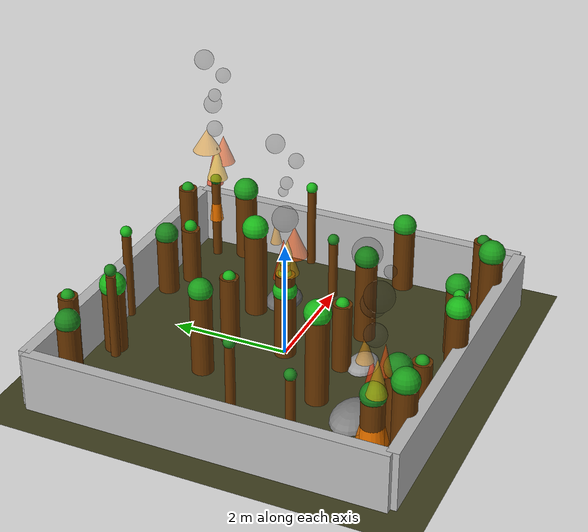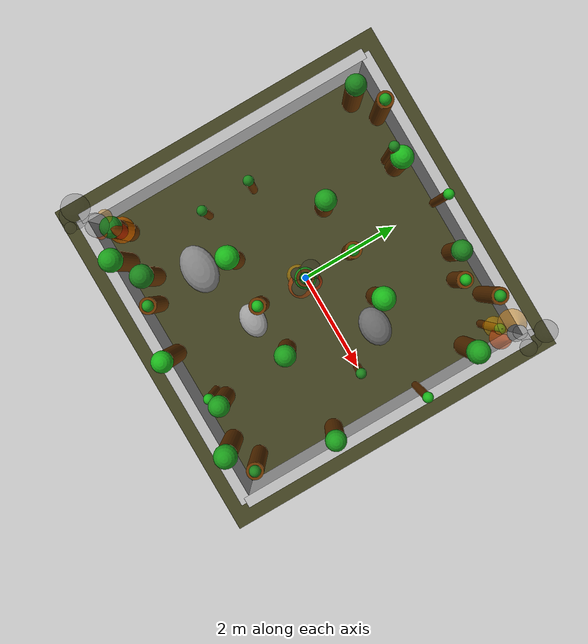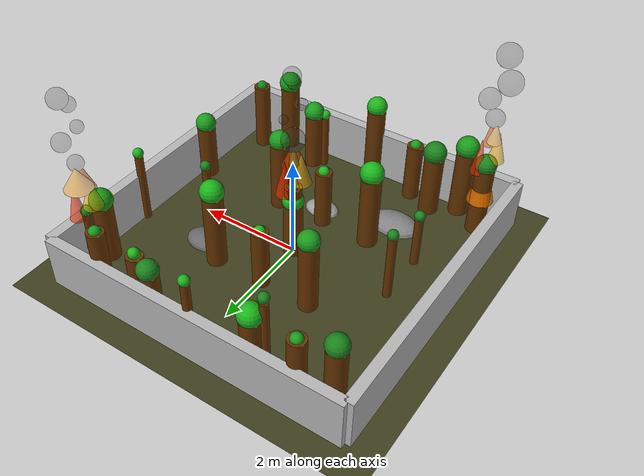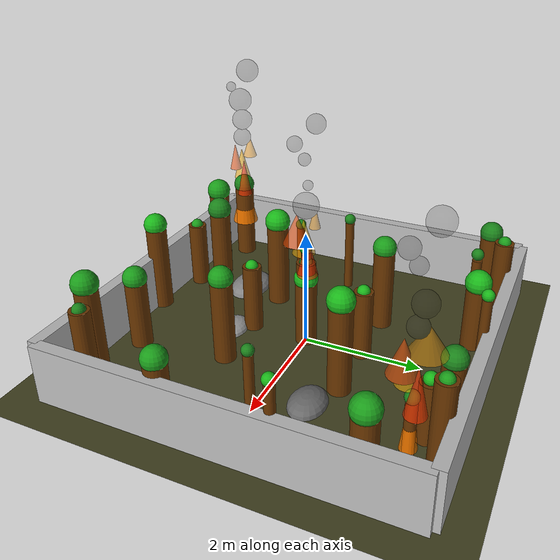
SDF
<sdf version="1.10">
 <world name="demo">
  <plugin name="gz::sim::systems::Physics" filename="gz-sim-physics-system"/>
  <plugin name="gz::sim::systems::Sensors" filename="gz-sim-sensors-system">
   <render_engine>ogre2</render_engine>
  </plugin>
  <plugin name="gz::sim::systems::SceneBroadcaster" filename="gz-sim-scene-broadcaster-system"/>
  <plugin name="gz::sim::systems::UserCommands" filename="gz-sim-user-commands-system"/>
  <plugin name="gz::sim::systems::Contact" filename="gz-sim-contact-system"/>
  <gravity>0 0 -9.8000000000000007</gravity>
  <magnetic_field>5.5644999999999998e-06 2.2875799999999999e-05 -4.2388400000000002e-05</magnetic_field>
  <atmosphere type="adiabatic"/>
  <physics type="ode">
   <max_step_size>0.001</max_step_size>
   <real_time_factor>1</real_time_factor>
   <real_time_update_rate>1000</real_time_update_rate>
   <ode>
    <solver>
     <type>quick</type>
     <iters>50</iters>
     <sor>1.0</sor>
     <use_dynamic_moi_rescaling>false</use_dynamic_moi_rescaling>
    </solver>
    <constraints>
     <cfm>0.0001</cfm>
     <erp>0.1</erp>
     <contact_max_correcting_vel>100.0</contact_max_correcting_vel>
     <contact_surface_layer>0.05</contact_surface_layer>
    </constraints>
   </ode>
  </physics>
  <scene>
   <ambient>0.400000006 0.400000006 0.400000006 1</ambient>
   <background>0.699999988 0.699999988 0.699999988 1</background>
   <shadows>true</shadows>
  </scene>
  <model name="wall1">
   <pose>3.0 0 0.5 0 0 0</pose>
   <static>true</static>
   <link name="link">
    <visual name="visual"><geometry><box><size>0.2 6 1</size></box></geometry></visual>
    <collision name="wall1_collision"><geometry><box><size>0.2 6 1</size></box></geometry></collision>
   </link>
  </model>
  <model name="wall2">
   <pose>-3.0 0 0.5 0 0 0</pose>
   <static>true</static>
   <link name="link">
    <visual name="visual"><geometry><box><size>0.2 6 1</size></box></geometry></visual>
    <collision name="wall2_collision"><geometry><box><size>0.2 6 1</size></box></geometry></collision>
   </link>
  </model>
  <model name="wall3">
   <pose>0 3.0 0.5 0 0 1.5708</pose>
   <static>true</static>
   <link name="link">
    <visual name="visual"><geometry><box><size>0.2 6 1</size></box></geometry></visual>
    <collision name="wall3_collision"><geometry><box><size>0.2 6 1</size></box></geometry></collision>
   </link>
  </model>
  <model name="wall4">
   <pose>0 -3.0 0.5 0 0 1.5708</pose>
   <static>true</static>
   <link name="link">
    <visual name="visual"><geometry><box><size>0.2 6 1</size></box></geometry></visual>
    <collision name="wall4_collision"><geometry><box><size>0.2 6 1</size></box></geometry></collision>
   </link>
  </model>
  <model name="arbre1">
   <pose>-1.2 2.5 0 0 0 0</pose>
   <link name="tronc">
    <visual name="tronc_vis">
     <geometry><cylinder><radius>0.08</radius><length>1.5</length></cylinder></geometry>
     <material><ambient>0.4 0.2 0 1</ambient><diffuse>0.4 0.2 0 1</diffuse></material>
     <pose>0 0 0.75 0 0 0</pose>
    </visual>
    <visual name="feuillage">
     <geometry><sphere><radius>0.1</radius></sphere></geometry>
     <material><ambient>0.1 0.5 0.1 1</ambient><diffuse>0.1 0.5 0.1 1</diffuse></material>
     <pose>0 0 1.6 0 0 0</pose>
    </visual>
    <collision name="tronc_collision">
     <geometry><cylinder><radius>0.12</radius><length>1.5</length></cylinder></geometry>
     <pose>0 0 0.75 0 0 0</pose>
    </collision>
    <collision name="feuillage_collision">
     <geometry><sphere><radius>0.15</radius></sphere></geometry>
     <pose>0 0 1.6 0 0 0</pose>
    </collision>
   </link>
   <static>true</static>
  </model>
  <model name="arbre2">
   <pose>1.2 -2.5 0 0 0 0</pose>
   <link name="tronc">
    <visual name="tronc_vis">
     <geometry><cylinder><radius>0.18</radius><length>1.2</length></cylinder></geometry>
     <material><ambient>0.4 0.2 0 1</ambient><diffuse>0.4 0.2 0 1</diffuse></material>
     <pose>0 0 0.6 0 0 0</pose>
    </visual>
    <visual name="feuillage">
     <geometry><sphere><radius>0.2</radius></sphere></geometry>
     <material><ambient>0.1 0.6 0.1 1</ambient><diffuse>0.1 0.6 0.1 1</diffuse></material>
     <pose>0 0 1.25 0 0 0</pose>
    </visual>
    <collision name="tronc_collision">
     <geometry><cylinder><radius>0.25</radius><length>1.2</length></cylinder></geometry>
     <pose>0 0 0.6 0 0 0</pose>
    </collision>
    <collision name="feuillage_collision">
     <geometry><sphere><radius>0.14</radius></sphere></geometry>
     <pose>0 0 1.25 0 0 0</pose>
    </collision>
   </link>
   <static>true</static>
  </model>
  <model name="arbre3">
   <pose>1.5 2.5 0 0 0 0</pose>
   <link name="tronc">
    <visual name="tronc_vis">
     <geometry><cylinder><radius>0.16</radius><length>1.0</length></cylinder></geometry>
     <material><ambient>0.4 0.2 0 1</ambient><diffuse>0.4 0.2 0 1</diffuse></material>
     <pose>0 0 0.5 0 0 0</pose>
    </visual>
    <visual name="feuillage">
     <geometry><sphere><radius>0.11</radius></sphere></geometry>
     <material><ambient>0.1 0.7 0.1 1</ambient><diffuse>0.1 0.7 0.1 1</diffuse></material>
     <pose>0 0 1.05 0 0 0</pose>
    </visual>
    <collision name="tronc_collision">
     <geometry><cylinder><radius>0.13</radius><length>1.0</length></cylinder></geometry>
     <pose>0 0 0.5 0 0 0</pose>
    </collision>
    <collision name="feuillage_collision">
     <geometry><sphere><radius>0.17</radius></sphere></geometry>
     <pose>0 0 1.0 0 0 0</pose>
    </collision>
   </link>
   <static>true</static>
  </model>
  <model name="arbre4">
   <pose>-1.5 -2.5 0 0 0 0</pose>
   <link name="tronc">
    <visual name="tronc_vis">
     <geometry><cylinder><radius>0.19</radius><length>1.3</length></cylinder></geometry>
     <material><ambient>0.4 0.2 0 1</ambient><diffuse>0.4 0.2 0 1</diffuse></material>
     <pose>0 0 0.65 0 0 0</pose>
    </visual>
    <visual name="feuillage">
     <geometry><sphere><radius>0.22</radius></sphere></geometry>
     <material><ambient>0.1 0.5 0.1 1</ambient><diffuse>0.1 0.5 0.1 1</diffuse></material>
     <pose>0 0 1.35 0 0 0</pose>
    </visual>
    <collision name="tronc_collision">
     <geometry><cylinder><radius>0.09</radius><length>1.3</length></cylinder></geometry>
     <pose>0 0 0.65 0 0 0</pose>
    </collision>
    <collision name="feuillage_collision">
     <geometry><sphere><radius>0.21</radius></sphere></geometry>
     <pose>0 0 1.3 0 0 0</pose>
    </collision>
   </link>
   <static>true</static>
  </model>
  <model name="arbre5">
   <link name="tronc">
    <visual name="tronc_vis">
     <geometry><cylinder><radius>0.08</radius><length>1.7</length></cylinder></geometry>
     <material><ambient>0.4 0.2 0 1</ambient><diffuse>0.4 0.2 0 1</diffuse></material>
     <pose>0 0 0.85 0 0 0</pose>
    </visual>
    <visual name="feuillage">
     <geometry><sphere><radius>0.1</radius></sphere></geometry>
     <material><ambient>0.1 0.6 0.1 1</ambient><diffuse>0.1 0.6 0.1 1</diffuse></material>
     <pose>0 0 1.75 0 0 0</pose>
    </visual>
    <collision name="tronc_collision">
     <geometry><cylinder><radius>0.12</radius><length>1.4</length></cylinder></geometry>
     <pose>0 0 0.7 0 0 0</pose>
    </collision>
    <collision name="feuillage_collision">
     <geometry><sphere><radius>0.15</radius></sphere></geometry>
     <pose>0 0 1.4 0 0 0</pose>
    </collision>
   </link>
   <static>true</static>
  </model>
  <model name="gros_caillou1">
   <pose>-1.2 -1.7 0 0 0 0</pose>
   <link name="caillou">
    <visual name="caillou_vis">
     <geometry><ellipsoid><radii>0.5 0.35 0.2</radii></ellipsoid></geometry>
     <material><ambient>0.5 0.5 0.5 1</ambient><diffuse>0.5 0.5 0.5 1</diffuse></material>
    </visual>
   </link>
   <static>true</static>
  </model>
  <model name="gros_caillou2">
   <pose>1.5 0.7 0 0 0 0</pose>
   <link name="caillou">
    <visual name="caillou_vis">
     <geometry><ellipsoid><radii>0.4 0.3 0.18</radii></ellipsoid></geometry>
     <material><ambient>0.4 0.4 0.4 1</ambient><diffuse>0.4 0.4 0.4 1</diffuse></material>
    </visual>
   </link>
   <static>true</static>
  </model>
  <model name="gros_caillou3">
   <pose>0.2 -1.3 0 0 0 0</pose>
   <link name="caillou">
    <visual name="caillou_vis">
     <geometry><ellipsoid><radii>0.35 0.25 0.15</radii></ellipsoid></geometry>
     <material><ambient>0.6 0.6 0.6 1</ambient><diffuse>0.6 0.6 0.6 1</diffuse></material>
    </visual>
   </link>
   <static>true</static>
  </model>
  <light name="sun" type="directional">
   <pose>0 0 10 0 0 0</pose>
   <intensity>1</intensity>
   <direction>-0.5 0.10000000000000001 -0.90000000000000002</direction>
   <diffuse>0.800000012 0.800000012 0.800000012 1</diffuse>
   <specular>0.200000003 0.200000003 0.200000003 1</specular>
   <attenuation>
    <range>1000</range>
    <linear>0.01</linear>
    <constant>0.90000000000000002</constant>
    <quadratic>0.001</quadratic>
   </attenuation>
   <spot><inner_angle>0</inner_angle><outer_angle>0</outer_angle><falloff>0</falloff></spot>
  </light>
  <model name="arbre16">
   <pose>-2.5 2.5 0 0 0 0</pose>
   <link name="tronc">
    <visual name="tronc_vis">
     <geometry><cylinder><radius>0.18</radius><length>1.4</length></cylinder></geometry>
     <material><ambient>0.4 0.2 0 1</ambient><diffuse>0.4 0.2 0 1</diffuse></material>
     <pose>0 0 0.7 0 0 0</pose>
    </visual>
    <visual name="feuillage">
     <geometry><sphere><radius>0.2</radius></sphere></geometry>
     <material><ambient>0.1 0.5 0.1 1</ambient><diffuse>0.1 0.5 0.1 1</diffuse></material>
     <pose>0 0 1.4 0 0 0</pose>
    </visual>
    <collision name="tronc_collision">
     <geometry><cylinder><radius>0.25</radius><length>1.4</length></cylinder></geometry>
     <pose>0 0 0.7 0 0 0</pose>
    </collision>
    <collision name="feuillage_collision">
     <geometry><sphere><radius>0.14</radius></sphere></geometry>
     <pose>0 0 1.4 0 0 0</pose>
    </collision>
   </link>
   <static>true</static>
  </model>
  <model name="arbre17">
   <pose>-2.0 2.8 0 0 0 0</pose>
   <link name="tronc">
    <visual name="tronc_vis">
     <geometry><cylinder><radius>0.16</radius><length>1.5</length></cylinder></geometry>
     <material><ambient>0.4 0.2 0 1</ambient><diffuse>0.4 0.2 0 1</diffuse></material>
     <pose>0 0 0.75 0 0 0</pose>
    </visual>
    <visual name="feuillage">
     <geometry><sphere><radius>0.11</radius></sphere></geometry>
     <material><ambient>0.1 0.6 0.1 1</ambient><diffuse>0.1 0.6 0.1 1</diffuse></material>
     <pose>0 0 1.5 0 0 0</pose>
    </visual>
    <collision name="tronc_collision">
     <geometry><cylinder><radius>0.13</radius><length>1.5</length></cylinder></geometry>
     <pose>0 0 0.75 0 0 0</pose>
    </collision>
    <collision name="feuillage_collision">
     <geometry><sphere><radius>0.17</radius></sphere></geometry>
     <pose>0 0 1.5 0 0 0</pose>
    </collision>
   </link>
   <static>true</static>
  </model>
  <model name="arbre18">
   <pose>-1.0 2.6 0 0 0 0</pose>
   <link name="tronc">
    <visual name="tronc_vis">
     <geometry><cylinder><radius>0.19</radius><length>1.2</length></cylinder></geometry>
     <material><ambient>0.4 0.2 0 1</ambient><diffuse>0.4 0.2 0 1</diffuse></material>
     <pose>0 0 0.6 0 0 0</pose>
    </visual>
    <visual name="feuillage">
     <geometry><sphere><radius>0.22</radius></sphere></geometry>
     <material><ambient>0.1 0.7 0.1 1</ambient><diffuse>0.1 0.7 0.1 1</diffuse></material>
     <pose>0 0 1.2 0 0 0</pose>
    </visual>
    <collision name="tronc_collision">
     <geometry><cylinder><radius>0.09</radius><length>1.2</length></cylinder></geometry>
     <pose>0 0 0.6 0 0 0</pose>
    </collision>
    <collision name="feuillage_collision">
     <geometry><sphere><radius>0.21</radius></sphere></geometry>
     <pose>0 0 1.2 0 0 0</pose>
    </collision>
   </link>
   <static>true</static>
  </model>
  <model name="arbre19">
   <pose>0.0 2.9 0 0 0 0</pose>
   <link name="tronc">
    <visual name="tronc_vis">
     <geometry><cylinder><radius>0.08</radius><length>1.6</length></cylinder></geometry>
     <material><ambient>0.4 0.2 0 1</ambient><diffuse>0.4 0.2 0 1</diffuse></material>
     <pose>0 0 0.8 0 0 0</pose>
    </visual>
    <visual name="feuillage">
     <geometry><sphere><radius>0.1</radius></sphere></geometry>
     <material><ambient>0.1 0.7 0.1 1</ambient><diffuse>0.1 0.7 0.1 1</diffuse></material>
     <pose>0 0 1.6 0 0 0</pose>
    </visual>
    <collision name="tronc_collision">
     <geometry><cylinder><radius>0.12</radius><length>1.6</length></cylinder></geometry>
     <pose>0 0 0.8 0 0 0</pose>
    </collision>
    <collision name="feuillage_collision">
     <geometry><sphere><radius>0.15</radius></sphere></geometry>
     <pose>0 0 1.6 0 0 0</pose>
    </collision>
   </link>
   <static>true</static>
  </model>
  <model name="arbre20">
   <pose>1.0 2.7 0 0 0 0</pose>
   <link name="tronc">
    <visual name="tronc_vis">
     <geometry><cylinder><radius>0.18</radius><length>1.1</length></cylinder></geometry>
     <material><ambient>0.4 0.2 0 1</ambient><diffuse>0.4 0.2 0 1</diffuse></material>
     <pose>0 0 0.55 0 0 0</pose>
    </visual>
    <visual name="feuillage">
     <geometry><sphere><radius>0.2</radius></sphere></geometry>
     <material><ambient>0.1 0.5 0.1 1</ambient><diffuse>0.1 0.5 0.1 1</diffuse></material>
     <pose>0 0 1.1 0 0 0</pose>
    </visual>
    <collision name="tronc_collision">
     <geometry><cylinder><radius>0.25</radius><length>1.1</length></cylinder></geometry>
     <pose>0 0 0.55 0 0 0</pose>
    </collision>
    <collision name="feuillage_collision">
     <geometry><sphere><radius>0.14</radius></sphere></geometry>
     <pose>0 0 1.1 0 0 0</pose>
    </collision>
   </link>
   <static>true</static>
  </model>
  <model name="arbre21">
   <pose>2.0 2.8 0 0 0 0</pose>
   <link name="tronc">
    <visual name="tronc_vis">
     <geometry><cylinder><radius>0.16</radius><length>1.5</length></cylinder></geometry>
     <material><ambient>0.4 0.2 0 1</ambient><diffuse>0.4 0.2 0 1</diffuse></material>
     <pose>0 0 0.75 0 0 0</pose>
    </visual>
    <visual name="feuillage">
     <geometry><sphere><radius>0.11</radius></sphere></geometry>
     <material><ambient>0.1 0.6 0.1 1</ambient><diffuse>0.1 0.6 0.1 1</diffuse></material>
     <pose>0 0 1.5 0 0 0</pose>
    </visual>
    <collision name="tronc_collision">
     <geometry><cylinder><radius>0.13</radius><length>1.5</length></cylinder></geometry>
     <pose>0 0 0.75 0 0 0</pose>
    </collision>
    <collision name="feuillage_collision">
     <geometry><sphere><radius>0.17</radius></sphere></geometry>
     <pose>0 0 1.5 0 0 0</pose>
    </collision>
   </link>
   <static>true</static>
  </model>
  <model name="arbre22">
   <pose>2.7 2.0 0 0 0 0</pose>
   <link name="tronc">
    <visual name="tronc_vis">
     <geometry><cylinder><radius>0.19</radius><length>1.3</length></cylinder></geometry>
     <material><ambient>0.4 0.2 0 1</ambient><diffuse>0.4 0.2 0 1</diffuse></material>
     <pose>0 0 0.65 0 0 0</pose>
    </visual>
    <visual name="feuillage">
     <geometry><sphere><radius>0.22</radius></sphere></geometry>
     <material><ambient>0.1 0.6 0.1 1</ambient><diffuse>0.1 0.6 0.1 1</diffuse></material>
     <pose>0 0 1.3 0 0 0</pose>
    </visual>
    <collision name="tronc_collision">
     <geometry><cylinder><radius>0.09</radius><length>1.3</length></cylinder></geometry>
     <pose>0 0 0.65 0 0 0</pose>
    </collision>
    <collision name="feuillage_collision">
     <geometry><sphere><radius>0.21</radius></sphere></geometry>
     <pose>0 0 1.3 0 0 0</pose>
    </collision>
   </link>
   <static>true</static>
  </model>
  <model name="arbre23">
   <pose>2.9 0.8 0 0 0 0</pose>
   <link name="tronc">
    <visual name="tronc_vis">
     <geometry><cylinder><radius>0.08</radius><length>1.5</length></cylinder></geometry>
     <material><ambient>0.4 0.2 0 1</ambient><diffuse>0.4 0.2 0 1</diffuse></material>
     <pose>0 0 0.75 0 0 0</pose>
    </visual>
    <visual name="feuillage">
     <geometry><sphere><radius>0.1</radius></sphere></geometry>
     <material><ambient>0.1 0.7 0.1 1</ambient><diffuse>0.1 0.7 0.1 1</diffuse></material>
     <pose>0 0 1.5 0 0 0</pose>
    </visual>
    <collision name="tronc_collision">
     <geometry><cylinder><radius>0.12</radius><length>1.5</length></cylinder></geometry>
     <pose>0 0 0.75 0 0 0</pose>
    </collision>
    <collision name="feuillage_collision">
     <geometry><sphere><radius>0.15</radius></sphere></geometry>
     <pose>0 0 1.5 0 0 0</pose>
    </collision>
   </link>
   <static>true</static>
  </model>
  <model name="arbre24">
   <pose>2.8 -1.0 0 0 0 0</pose>
   <link name="tronc">
    <visual name="tronc_vis">
     <geometry><cylinder><radius>0.18</radius><length>1.2</length></cylinder></geometry>
     <material><ambient>0.4 0.2 0 1</ambient><diffuse>0.4 0.2 0 1</diffuse></material>
     <pose>0 0 0.6 0 0 0</pose>
    </visual>
    <visual name="feuillage">
     <geometry><sphere><radius>0.2</radius></sphere></geometry>
     <material><ambient>0.1 0.6 0.1 1</ambient><diffuse>0.1 0.6 0.1 1</diffuse></material>
     <pose>0 0 1.2 0 0 0</pose>
    </visual>
    <collision name="tronc_collision">
     <geometry><cylinder><radius>0.25</radius><length>1.2</length></cylinder></geometry>
     <pose>0 0 0.6 0 0 0</pose>
    </collision>
    <collision name="feuillage_collision">
     <geometry><sphere><radius>0.14</radius></sphere></geometry>
     <pose>0 0 1.2 0 0 0</pose>
    </collision>
   </link>
   <static>true</static>
  </model>
  <model name="arbre25">
   <pose>2.5 -2.5 0 0 0 0</pose>
   <link name="tronc">
    <visual name="tronc_vis">
     <geometry><cylinder><radius>0.16</radius><length>1.4</length></cylinder></geometry>
     <material><ambient>0.4 0.2 0 1</ambient><diffuse>0.4 0.2 0 1</diffuse></material>
     <pose>0 0 0.7 0 0 0</pose>
    </visual>
    <visual name="feuillage">
     <geometry><sphere><radius>0.11</radius></sphere></geometry>
     <material><ambient>0.1 0.5 0.1 1</ambient><diffuse>0.1 0.5 0.1 1</diffuse></material>
     <pose>0 0 1.4 0 0 0</pose>
    </visual>
    <collision name="tronc_collision">
     <geometry><cylinder><radius>0.13</radius><length>1.4</length></cylinder></geometry>
     <pose>0 0 0.7 0 0 0</pose>
    </collision>
    <collision name="feuillage_collision">
     <geometry><sphere><radius>0.17</radius></sphere></geometry>
     <pose>0 0 1.4 0 0 0</pose>
    </collision>
   </link>
   <static>true</static>
  </model>
  <model name="arbre26">
   <pose>2.0 -2.8 0 0 0 0</pose>
   <link name="tronc">
    <visual name="tronc_vis">
     <geometry><cylinder><radius>0.19</radius><length>1.5</length></cylinder></geometry>
     <material><ambient>0.4 0.2 0 1</ambient><diffuse>0.4 0.2 0 1</diffuse></material>
     <pose>0 0 0.75 0 0 0</pose>
    </visual>
    <visual name="feuillage">
     <geometry><sphere><radius>0.22</radius></sphere></geometry>
     <material><ambient>0.1 0.6 0.1 1</ambient><diffuse>0.1 0.6 0.1 1</diffuse></material>
     <pose>0 0 1.5 0 0 0</pose>
    </visual>
    <collision name="tronc_collision">
     <geometry><cylinder><radius>0.09</radius><length>1.5</length></cylinder></geometry>
     <pose>0 0 0.75 0 0 0</pose>
    </collision>
    <collision name="feuillage_collision">
     <geometry><sphere><radius>0.21</radius></sphere></geometry>
     <pose>0 0 1.5 0 0 0</pose>
    </collision>
   </link>
   <static>true</static>
  </model>
  <model name="arbre27">
   <pose>1.0 -2.6 0 0 0 0</pose>
   <link name="tronc">
    <visual name="tronc_vis">
     <geometry><cylinder><radius>0.08</radius><length>1.2</length></cylinder></geometry>
     <material><ambient>0.4 0.2 0 1</ambient><diffuse>0.4 0.2 0 1</diffuse></material>
     <pose>0 0 0.6 0 0 0</pose>
    </visual>
    <visual name="feuillage">
     <geometry><sphere><radius>0.1</radius></sphere></geometry>
     <material><ambient>0.1 0.7 0.1 1</ambient><diffuse>0.1 0.7 0.1 1</diffuse></material>
     <pose>0 0 1.2 0 0 0</pose>
    </visual>
    <collision name="tronc_collision">
     <geometry><cylinder><radius>0.12</radius><length>1.2</length></cylinder></geometry>
     <pose>0 0 0.6 0 0 0</pose>
    </collision>
    <collision name="feuillage_collision">
     <geometry><sphere><radius>0.15</radius></sphere></geometry>
     <pose>0 0 1.2 0 0 0</pose>
    </collision>
   </link>
   <static>true</static>
  </model>
  <model name="arbre28">
   <pose>0.0 -2.9 0 0 0 0</pose>
   <link name="tronc">
    <visual name="tronc_vis">
     <geometry><cylinder><radius>0.18</radius><length>1.6</length></cylinder></geometry>
     <material><ambient>0.4 0.2 0 1</ambient><diffuse>0.4 0.2 0 1</diffuse></material>
     <pose>0 0 0.8 0 0 0</pose>
    </visual>
    <visual name="feuillage">
     <geometry><sphere><radius>0.2</radius></sphere></geometry>
     <material><ambient>0.1 0.7 0.1 1</ambient><diffuse>0.1 0.7 0.1 1</diffuse></material>
     <pose>0 0 1.6 0 0 0</pose>
    </visual>
    <collision name="tronc_collision">
     <geometry><cylinder><radius>0.25</radius><length>1.6</length></cylinder></geometry>
     <pose>0 0 0.8 0 0 0</pose>
    </collision>
    <collision name="feuillage_collision">
     <geometry><sphere><radius>0.14</radius></sphere></geometry>
     <pose>0 0 1.6 0 0 0</pose>
    </collision>
   </link>
   <static>true</static>
  </model>
  <model name="arbre29">
   <pose>-1.0 -2.7 0 0 0 0</pose>
   <link name="tronc">
    <visual name="tronc_vis">
     <geometry><cylinder><radius>0.16</radius><length>1.2</length></cylinder></geometry>
     <material><ambient>0.4 0.2 0 1</ambient><diffuse>0.4 0.2 0 1</diffuse></material>
     <pose>0 0 0.6 0 0 0</pose>
    </visual>
    <visual name="feuillage">
     <geometry><sphere><radius>0.11</radius></sphere></geometry>
     <material><ambient>0.1 0.6 0.1 1</ambient><diffuse>0.1 0.6 0.1 1</diffuse></material>
     <pose>0 0 1.2 0 0 0</pose>
    </visual>
    <collision name="tronc_collision">
     <geometry><cylinder><radius>0.13</radius><length>1.2</length></cylinder></geometry>
     <pose>0 0 0.6 0 0 0</pose>
    </collision>
    <collision name="feuillage_collision">
     <geometry><sphere><radius>0.17</radius></sphere></geometry>
     <pose>0 0 1.2 0 0 0</pose>
    </collision>
   </link>
   <static>true</static>
  </model>
  <model name="arbre30">
   <pose>-2.0 -2.8 0 0 0 0</pose>
   <link name="tronc">
    <visual name="tronc_vis">
     <geometry><cylinder><radius>0.19</radius><length>1.5</length></cylinder></geometry>
     <material><ambient>0.4 0.2 0 1</ambient><diffuse>0.4 0.2 0 1</diffuse></material>
     <pose>0 0 0.75 0 0 0</pose>
    </visual>
    <visual name="feuillage">
     <geometry><sphere><radius>0.22</radius></sphere></geometry>
     <material><ambient>0.1 0.6 0.1 1</ambient><diffuse>0.1 0.6 0.1 1</diffuse></material>
     <pose>0 0 1.5 0 0 0</pose>
    </visual>
    <collision name="tronc_collision">
     <geometry><cylinder><radius>0.09</radius><length>1.5</length></cylinder></geometry>
     <pose>0 0 0.75 0 0 0</pose>
    </collision>
    <collision name="feuillage_collision">
     <geometry><sphere><radius>0.21</radius></sphere></geometry>
     <pose>0 0 1.5 0 0 0</pose>
    </collision>
   </link>
   <static>true</static>
  </model>
  <model name="arbre31">
   <pose>-2.0 0.0 0 0 0 0</pose>
   <link name="tronc">
    <visual name="tronc_vis">
     <geometry><cylinder><radius>0.08</radius><length>1.4</length></cylinder></geometry>
     <material><ambient>0.4 0.2 0 1</ambient><diffuse>0.4 0.2 0 1</diffuse></material>
     <pose>0 0 0.7 0 0 0</pose>
    </visual>
    <visual name="feuillage">
     <geometry><sphere><radius>0.1</radius></sphere></geometry>
     <material><ambient>0.1 0.5 0.1 1</ambient><diffuse>0.1 0.5 0.1 1</diffuse></material>
     <pose>0 0 1.4 0 0 0</pose>
    </visual>
    <collision name="tronc_collision">
     <geometry><cylinder><radius>0.12</radius><length>1.4</length></cylinder></geometry>
     <pose>0 0 0.7 0 0 0</pose>
    </collision>
    <collision name="feuillage_collision">
     <geometry><sphere><radius>0.15</radius></sphere></geometry>
     <pose>0 0 1.4 0 0 0</pose>
    </collision>
   </link>
   <static>true</static>
  </model>
  <model name="arbre32">
   <pose>-1.0 1.0 0 0 0 0</pose>
   <link name="tronc">
    <visual name="tronc_vis">
     <geometry><cylinder><radius>0.18</radius><length>1.5</length></cylinder></geometry>
     <material><ambient>0.4 0.2 0 1</ambient><diffuse>0.4 0.2 0 1</diffuse></material>
     <pose>0 0 0.75 0 0 0</pose>
    </visual>
    <visual name="feuillage">
     <geometry><sphere><radius>0.2</radius></sphere></geometry>
     <material><ambient>0.1 0.6 0.1 1</ambient><diffuse>0.1 0.6 0.1 1</diffuse></material>
     <pose>0 0 1.5 0 0 0</pose>
    </visual>
    <collision name="tronc_collision">
     <geometry><cylinder><radius>0.25</radius><length>1.5</length></cylinder></geometry>
     <pose>0 0 0.75 0 0 0</pose>
    </collision>
    <collision name="feuillage_collision">
     <geometry><sphere><radius>0.14</radius></sphere></geometry>
     <pose>0 0 1.5 0 0 0</pose>
    </collision>
   </link>
   <static>true</static>
  </model>
  <model name="arbre33">
   <pose>0.0 1.0 0 0 0 0</pose>
   <link name="tronc">
    <visual name="tronc_vis">
     <geometry><cylinder><radius>0.16</radius><length>1.2</length></cylinder></geometry>
     <material><ambient>0.4 0.2 0 1</ambient><diffuse>0.4 0.2 0 1</diffuse></material>
     <pose>0 0 0.6 0 0 0</pose>
    </visual>
    <visual name="feuillage">
     <geometry><sphere><radius>0.11</radius></sphere></geometry>
     <material><ambient>0.1 0.7 0.1 1</ambient><diffuse>0.1 0.7 0.1 1</diffuse></material>
     <pose>0 0 1.2 0 0 0</pose>
    </visual>
    <collision name="tronc_collision">
     <geometry><cylinder><radius>0.13</radius><length>1.2</length></cylinder></geometry>
     <pose>0 0 0.6 0 0 0</pose>
    </collision>
    <collision name="feuillage_collision">
     <geometry><sphere><radius>0.17</radius></sphere></geometry>
     <pose>0 0 1.2 0 0 0</pose>
    </collision>
   </link>
   <static>true</static>
  </model>
  <model name="arbre34">
   <pose>1.0 1.0 0 0 0 0</pose>
   <link name="tronc">
    <visual name="tronc_vis">
     <geometry><cylinder><radius>0.19</radius><length>1.6</length></cylinder></geometry>
     <material><ambient>0.4 0.2 0 1</ambient><diffuse>0.4 0.2 0 1</diffuse></material>
     <pose>0 0 0.8 0 0 0</pose>
    </visual>
    <visual name="feuillage">
     <geometry><sphere><radius>0.22</radius></sphere></geometry>
     <material><ambient>0.1 0.7 0.1 1</ambient><diffuse>0.1 0.7 0.1 1</diffuse></material>
     <pose>0 0 1.6 0 0 0</pose>
    </visual>
    <collision name="tronc_collision">
     <geometry><cylinder><radius>0.09</radius><length>1.6</length></cylinder></geometry>
     <pose>0 0 0.8 0 0 0</pose>
    </collision>
    <collision name="feuillage_collision">
     <geometry><sphere><radius>0.21</radius></sphere></geometry>
     <pose>0 0 1.6 0 0 0</pose>
    </collision>
   </link>
   <static>true</static>
  </model>
  <model name="arbre35">
   <pose>2.0 0.0 0 0 0 0</pose>
   <link name="tronc">
    <visual name="tronc_vis">
     <geometry><cylinder><radius>0.08</radius><length>1.1</length></cylinder></geometry>
     <material><ambient>0.4 0.2 0 1</ambient><diffuse>0.4 0.2 0 1</diffuse></material>
     <pose>0 0 0.55 0 0 0</pose>
    </visual>
    <visual name="feuillage">
     <geometry><sphere><radius>0.1</radius></sphere></geometry>
     <material><ambient>0.1 0.5 0.1 1</ambient><diffuse>0.1 0.5 0.1 1</diffuse></material>
     <pose>0 0 1.1 0 0 0</pose>
    </visual>
    <collision name="tronc_collision">
     <geometry><cylinder><radius>0.12</radius><length>1.1</length></cylinder></geometry>
     <pose>0 0 0.55 0 0 0</pose>
    </collision>
    <collision name="feuillage_collision">
     <geometry><sphere><radius>0.15</radius></sphere></geometry>
     <pose>0 0 1.1 0 0 0</pose>
    </collision>
   </link>
   <static>true</static>
  </model>
  <model name="arbre36">
   <pose>1.0 -1.0 0 0 0 0</pose>
   <link name="tronc">
    <visual name="tronc_vis">
     <geometry><cylinder><radius>0.18</radius><length>1.5</length></cylinder></geometry>
     <material><ambient>0.4 0.2 0 1</ambient><diffuse>0.4 0.2 0 1</diffuse></material>
     <pose>0 0 0.75 0 0 0</pose>
    </visual>
    <visual name="feuillage">
     <geometry><sphere><radius>0.2</radius></sphere></geometry>
     <material><ambient>0.1 0.6 0.1 1</ambient><diffuse>0.1 0.6 0.1 1</diffuse></material>
     <pose>0 0 1.5 0 0 0</pose>
    </visual>
    <collision name="tronc_collision">
     <geometry><cylinder><radius>0.25</radius><length>1.5</length></cylinder></geometry>
     <pose>0 0 0.75 0 0 0</pose>
    </collision>
    <collision name="feuillage_collision">
     <geometry><sphere><radius>0.14</radius></sphere></geometry>
     <pose>0 0 1.5 0 0 0</pose>
    </collision>
   </link>
   <static>true</static>
  </model>
  <model name="arbre37">
   <pose>0.0 -1.0 0 0 0 0</pose>
   <link name="tronc">
    <visual name="tronc_vis">
     <geometry><cylinder><radius>0.16</radius><length>1.2</length></cylinder></geometry>
     <material><ambient>0.4 0.2 0 1</ambient><diffuse>0.4 0.2 0 1</diffuse></material>
     <pose>0 0 0.6 0 0 0</pose>
    </visual>
    <visual name="feuillage">
     <geometry><sphere><radius>0.11</radius></sphere></geometry>
     <material><ambient>0.1 0.7 0.1 1</ambient><diffuse>0.1 0.7 0.1 1</diffuse></material>
     <pose>0 0 1.2 0 0 0</pose>
    </visual>
    <collision name="tronc_collision">
     <geometry><cylinder><radius>0.13</radius><length>1.2</length></cylinder></geometry>
     <pose>0 0 0.6 0 0 0</pose>
    </collision>
    <collision name="feuillage_collision">
     <geometry><sphere><radius>0.17</radius></sphere></geometry>
     <pose>0 0 1.2 0 0 0</pose>
    </collision>
   </link>
   <static>true</static>
  </model>
  <model name="arbre38">
   <pose>-1.0 -1.0 0 0 0 0</pose>
   <link name="tronc">
    <visual name="tronc_vis">
     <geometry><cylinder><radius>0.19</radius><length>1.6</length></cylinder></geometry>
     <material><ambient>0.4 0.2 0 1</ambient><diffuse>0.4 0.2 0 1</diffuse></material>
     <pose>0 0 0.8 0 0 0</pose>
    </visual>
    <visual name="feuillage">
     <geometry><sphere><radius>0.22</radius></sphere></geometry>
     <material><ambient>0.1 0.7 0.1 1</ambient><diffuse>0.1 0.7 0.1 1</diffuse></material>
     <pose>0 0 1.6 0 0 0</pose>
    </visual>
    <collision name="tronc_collision">
     <geometry><cylinder><radius>0.09</radius><length>1.6</length></cylinder></geometry>
     <pose>0 0 0.8 0 0 0</pose>
    </collision>
    <collision name="feuillage_collision">
     <geometry><sphere><radius>0.21</radius></sphere></geometry>
     <pose>0 0 1.6 0 0 0</pose>
    </collision>
   </link>
   <static>true</static>
  </model>
  <model name="arbre39">
   <pose>-2.0 -1.0 0 0 0 0</pose>
   <link name="tronc">
    <visual name="tronc_vis">
     <geometry><cylinder><radius>0.08</radius><length>1.1</length></cylinder></geometry>
     <material><ambient>0.4 0.2 0 1</ambient><diffuse>0.4 0.2 0 1</diffuse></material>
     <pose>0 0 0.55 0 0 0</pose>
    </visual>
    <visual name="feuillage">
     <geometry><sphere><radius>0.1</radius></sphere></geometry>
     <material><ambient>0.1 0.5 0.1 1</ambient><diffuse>0.1 0.5 0.1 1</diffuse></material>
     <pose>0 0 1.1 0 0 0</pose>
    </visual>
    <collision name="tronc_collision">
     <geometry><cylinder><radius>0.12</radius><length>1.1</length></cylinder></geometry>
     <pose>0 0 0.55 0 0 0</pose>
    </collision>
    <collision name="feuillage_collision">
     <geometry><sphere><radius>0.15</radius></sphere></geometry>
     <pose>0 0 1.1 0 0 0</pose>
    </collision>
   </link>
   <static>true</static>
  </model>
  <model name="arbre40">
   <link name="tronc">
    <visual name="tronc_vis">
     <geometry><cylinder><radius>0.18</radius><length>1.2</length></cylinder></geometry>
     <material><ambient>0.4 0.2 0 1</ambient><diffuse>0.4 0.2 0 1</diffuse></material>
     <pose>0 0 0.6 0 0 0</pose>
    </visual>
    <visual name="feuillage">
     <geometry><sphere><radius>0.2</radius></sphere></geometry>
     <material><ambient>0.1 0.7 0.1 1</ambient><diffuse>0.1 0.7 0.1 1</diffuse></material>
     <pose>0 0 1.2 0 0 0</pose>
    </visual>
    <collision name="tronc_collision">
     <geometry><cylinder><radius>0.25</radius><length>1.2</length></cylinder></geometry>
     <pose>0 0 0.6 0 0 0</pose>
    </collision>
    <collision name="feuillage_collision">
     <geometry><sphere><radius>0.14</radius></sphere></geometry>
     <pose>0 0 1.2 0 0 0</pose>
    </collision>
   </link>
   <static>true</static>
  </model>
  <model name="forest_ground">
   <static>true</static>
   <link name="link">
    <collision name="collision">
     <geometry><plane><normal>0 0 1</normal><size>100 100</size></plane></geometry>
    </collision>
    <visual name="visual">
     <geometry><plane><normal>0 0 1</normal><size>100 100</size></plane></geometry>
     <material>
      <ambient>0.25 0.18 0.08 1</ambient>
      <diffuse>0.25 0.25 0.12 1</diffuse>
      <specular>0.1 0.1 0.1 1</specular>
     </material>
    </visual>
   </link>
  </model>
  <model name="arbre_en_feu">
   <link name="tronc">
    <visual name="tronc_vis">
     <geometry><cylinder><radius>0.16</radius><length>1.5</length></cylinder></geometry>
     <material><ambient>0.4 0.2 0 1</ambient><diffuse>0.4 0.2 0 1</diffuse></material>
     <pose>0 0 0.75 0 0 0</pose>
    </visual>
    <visual name="feuillage">
     <geometry><sphere><radius>0.11</radius></sphere></geometry>
     <material><ambient>0.1 0.5 0.1 1</ambient><diffuse>0.1 0.5 0.1 1</diffuse></material>
     <pose>0 0 1.5 0 0 0</pose>
    </visual>
    <visual name="flamme1">
     <geometry><cone><radius>0.13</radius><length>1.0</length></cone></geometry>
     <material>
      <ambient>1 0.5 0 0.8</ambient>
      <diffuse>1 0.5 0 0.8</diffuse>
      <emissive>1 0.5 0 1</emissive>
     </material>
     <pose>0 0 1.2 0 0 0</pose>
    </visual>
    <visual name="flamme2">
     <geometry><cone><radius>0.17</radius><length>0.7</length></cone></geometry>
     <material>
      <ambient>1 0.2 0 0.6</ambient>
      <diffuse>1 0.2 0 0.6</diffuse>
      <emissive>1 0.2 0 1</emissive>
     </material>
     <pose>0.12 0.08 1.7 0 0 0</pose>
    </visual>
    <visual name="flamme3">
     <geometry><cone><radius>0.19</radius><length>0.6</length></cone></geometry>
     <material>
      <ambient>1 0.7 0 0.5</ambient>
      <diffuse>1 0.7 0 0.5</diffuse>
      <emissive>1 0.7 0 1</emissive>
     </material>
     <pose>-0.11 -0.09 1.9 0 0 0</pose>
    </visual>
    <visual name="flamme4">
     <geometry><cone><radius>0.22</radius><length>0.5</length></cone></geometry>
     <material>
      <ambient>1 0.3 0 0.5</ambient>
      <diffuse>1 0.3 0 0.5</diffuse>
      <emissive>1 0.3 0 1</emissive>
     </material>
     <pose>0.07 -0.13 2.1 0 0 0</pose>
    </visual>
    <visual name="flamme5">
     <geometry><cone><radius>0.09</radius><length>0.4</length></cone></geometry>
     <material>
      <ambient>1 0.6 0 0.4</ambient>
      <diffuse>1 0.6 0 0.4</diffuse>
      <emissive>1 0.6 0 1</emissive>
     </material>
     <pose>-0.09 0.11 2.3 0 0 0</pose>
    </visual>
    <visual name="fumee1">
     <geometry><sphere><radius>0.21</radius></sphere></geometry>
     <material><ambient>0.2 0.2 0.2 0.22</ambient><diffuse>0.2 0.2 0.2 0.22</diffuse></material>
     <pose>0 0 2.5 0 0 0</pose>
    </visual>
    <visual name="fumee2">
     <geometry><sphere><radius>0.08</radius></sphere></geometry>
     <material><ambient>0.15 0.15 0.15 0.18</ambient><diffuse>0.15 0.15 0.15 0.18</diffuse></material>
     <pose>0.13 0.09 2.9 0 0 0</pose>
    </visual>
    <visual name="fumee3">
     <geometry><sphere><radius>0.1</radius></sphere></geometry>
     <material><ambient>0.1 0.1 0.1 0.13</ambient><diffuse>0.1 0.1 0.1 0.13</diffuse></material>
     <pose>-0.12 -0.08 3.2 0 0 0</pose>
    </visual>
    <visual name="fumee4">
     <geometry><sphere><radius>0.12</radius></sphere></geometry>
     <material><ambient>0.12 0.12 0.12 0.10</ambient><diffuse>0.12 0.12 0.12 0.10</diffuse></material>
     <pose>0.08 -0.15 3.5 0 0 0</pose>
    </visual>
    <visual name="fumee5">
     <geometry><sphere><radius>0.15</radius></sphere></geometry>
     <material><ambient>0.09 0.09 0.09 0.08</ambient><diffuse>0.09 0.09 0.09 0.08</diffuse></material>
     <pose>-0.07 0.13 3.8 0 0 0</pose>
    </visual>
   </link>
   <light name="fire_light" type="point">
    <pose>0 0 2.2 0 0 0</pose>
    <diffuse>1 0.7 0.2 1</diffuse>
    <specular>1 0.7 0.2 1</specular>
    <attenuation>
     <range>8</range>
     <constant>0.7</constant>
     <linear>0.25</linear>
     <quadratic>0.04</quadratic>
    </attenuation>
    <cast_shadows>false</cast_shadows>
   </light>
   <static>true</static>
  </model>
  <model name="arbre_en_feu_bas_gauche">
   <pose>-2.5 -2.5 0 0 0 0</pose>
   <link name="tronc">
    <visual name="tronc_vis">
     <geometry><cylinder><radius>0.18</radius><length>1.5</length></cylinder></geometry>
     <material><ambient>0.4 0.2 0 1</ambient><diffuse>0.4 0.2 0 1</diffuse></material>
     <pose>0 0 0.75 0 0 0</pose>
    </visual>
    <visual name="feuillage">
     <geometry><sphere><radius>0.2</radius></sphere></geometry>
     <material><ambient>0.1 0.5 0.1 1</ambient><diffuse>0.1 0.5 0.1 1</diffuse></material>
     <pose>0 0 1.5 0 0 0</pose>
    </visual>
    <visual name="flamme1">
     <geometry><cone><radius>0.25</radius><length>1.0</length></cone></geometry>
     <material>
      <ambient>1 0.5 0 0.8</ambient>
      <diffuse>1 0.5 0 0.8</diffuse>
      <emissive>1 0.5 0 1</emissive>
     </material>
     <pose>0 0 1.2 0 0 0</pose>
    </visual>
    <visual name="flamme2">
     <geometry><cone><radius>0.14</radius><length>0.7</length></cone></geometry>
     <material>
      <ambient>1 0.2 0 0.6</ambient>
      <diffuse>1 0.2 0 0.6</diffuse>
      <emissive>1 0.2 0 1</emissive>
     </material>
     <pose>0.12 0.08 1.7 0 0 0</pose>
    </visual>
    <visual name="flamme3">
     <geometry><cone><radius>0.16</radius><length>0.6</length></cone></geometry>
     <material>
      <ambient>1 0.7 0 0.5</ambient>
      <diffuse>1 0.7 0 0.5</diffuse>
      <emissive>1 0.7 0 1</emissive>
     </material>
     <pose>-0.11 -0.09 1.9 0 0 0</pose>
    </visual>
    <visual name="flamme4">
     <geometry><cone><radius>0.11</radius><length>0.5</length></cone></geometry>
     <material>
      <ambient>1 0.3 0 0.5</ambient>
      <diffuse>1 0.3 0 0.5</diffuse>
      <emissive>1 0.3 0 1</emissive>
     </material>
     <pose>0.07 -0.13 2.1 0 0 0</pose>
    </visual>
    <visual name="flamme5">
     <geometry><cone><radius>0.13</radius><length>0.4</length></cone></geometry>
     <material>
      <ambient>1 0.6 0 0.4</ambient>
      <diffuse>1 0.6 0 0.4</diffuse>
      <emissive>1 0.6 0 1</emissive>
     </material>
     <pose>-0.09 0.11 2.3 0 0 0</pose>
    </visual>
    <visual name="fumee1">
     <geometry><sphere><radius>0.17</radius></sphere></geometry>
     <material><ambient>0.2 0.2 0.2 0.22</ambient><diffuse>0.2 0.2 0.2 0.22</diffuse></material>
     <pose>0 0 2.5 0 0 0</pose>
    </visual>
    <visual name="fumee2">
     <geometry><sphere><radius>0.19</radius></sphere></geometry>
     <material><ambient>0.15 0.15 0.15 0.18</ambient><diffuse>0.15 0.15 0.15 0.18</diffuse></material>
     <pose>0.13 0.09 2.9 0 0 0</pose>
    </visual>
    <visual name="fumee3">
     <geometry><sphere><radius>0.22</radius></sphere></geometry>
     <material><ambient>0.1 0.1 0.1 0.13</ambient><diffuse>0.1 0.1 0.1 0.13</diffuse></material>
     <pose>-0.12 -0.08 3.2 0 0 0</pose>
    </visual>
    <visual name="fumee4">
     <geometry><sphere><radius>0.09</radius></sphere></geometry>
     <material><ambient>0.12 0.12 0.12 0.10</ambient><diffuse>0.12 0.12 0.12 0.10</diffuse></material>
     <pose>0.08 -0.15 3.5 0 0 0</pose>
    </visual>
    <visual name="fumee5">
     <geometry><sphere><radius>0.21</radius></sphere></geometry>
     <material><ambient>0.09 0.09 0.09 0.08</ambient><diffuse>0.09 0.09 0.09 0.08</diffuse></material>
     <pose>-0.07 0.13 3.8 0 0 0</pose>
    </visual>
   </link>
   <light name="fire_light" type="point">
    <pose>0 0 2.2 0 0 0</pose>
    <diffuse>1 0.7 0.2 1</diffuse>
    <specular>1 0.7 0.2 1</specular>
    <attenuation>
     <range>8</range>
     <constant>0.7</constant>
     <linear>0.25</linear>
     <quadratic>0.04</quadratic>
    </attenuation>
    <cast_shadows>false</cast_shadows>
   </light>
   <static>true</static>
  </model>
  <model name="arbre_en_feu_haut_droite">
   <pose>2.5 2.5 0 0 0 0</pose>
   <link name="tronc">
    <visual name="tronc_vis">
     <geometry><cylinder><radius>0.08</radius><length>1.5</length></cylinder></geometry>
     <material><ambient>0.4 0.2 0 1</ambient><diffuse>0.4 0.2 0 1</diffuse></material>
     <pose>0 0 0.75 0 0 0</pose>
    </visual>
    <visual name="feuillage">
     <geometry><sphere><radius>0.1</radius></sphere></geometry>
     <material><ambient>0.1 0.5 0.1 1</ambient><diffuse>0.1 0.5 0.1 1</diffuse></material>
     <pose>0 0 1.5 0 0 0</pose>
    </visual>
    <visual name="flamme1">
     <geometry><cone><radius>0.12</radius><length>1.0</length></cone></geometry>
     <material>
      <ambient>1 0.5 0 0.8</ambient>
      <diffuse>1 0.5 0 0.8</diffuse>
      <emissive>1 0.5 0 1</emissive>
     </material>
     <pose>0 0 1.2 0 0 0</pose>
    </visual>
    <visual name="flamme2">
     <geometry><cone><radius>0.15</radius><length>0.7</length></cone></geometry>
     <material>
      <ambient>1 0.2 0 0.6</ambient>
      <diffuse>1 0.2 0 0.6</diffuse>
      <emissive>1 0.2 0 1</emissive>
     </material>
     <pose>0.12 0.08 1.7 0 0 0</pose>
    </visual>
    <visual name="flamme3">
     <geometry><cone><radius>0.18</radius><length>0.6</length></cone></geometry>
     <material>
      <ambient>1 0.7 0 0.5</ambient>
      <diffuse>1 0.7 0 0.5</diffuse>
      <emissive>1 0.7 0 1</emissive>
     </material>
     <pose>-0.11 -0.09 1.9 0 0 0</pose>
    </visual>
    <visual name="flamme4">
     <geometry><cone><radius>0.2</radius><length>0.5</length></cone></geometry>
     <material>
      <ambient>1 0.3 0 0.5</ambient>
      <diffuse>1 0.3 0 0.5</diffuse>
      <emissive>1 0.3 0 1</emissive>
     </material>
     <pose>0.07 -0.13 2.1 0 0 0</pose>
    </visual>
    <visual name="flamme5">
     <geometry><cone><radius>0.25</radius><length>0.4</length></cone></geometry>
     <material>
      <ambient>1 0.6 0 0.4</ambient>
      <diffuse>1 0.6 0 0.4</diffuse>
      <emissive>1 0.6 0 1</emissive>
     </material>
     <pose>-0.09 0.11 2.3 0 0 0</pose>
    </visual>
    <visual name="fumee1">
     <geometry><sphere><radius>0.14</radius></sphere></geometry>
     <material><ambient>0.2 0.2 0.2 0.22</ambient><diffuse>0.2 0.2 0.2 0.22</diffuse></material>
     <pose>0 0 2.5 0 0 0</pose>
    </visual>
    <visual name="fumee2">
     <geometry><sphere><radius>0.16</radius></sphere></geometry>
     <material><ambient>0.15 0.15 0.15 0.18</ambient><diffuse>0.15 0.15 0.15 0.18</diffuse></material>
     <pose>0.13 0.09 2.9 0 0 0</pose>
    </visual>
    <visual name="fumee3">
     <geometry><sphere><radius>0.11</radius></sphere></geometry>
     <material><ambient>0.1 0.1 0.1 0.13</ambient><diffuse>0.1 0.1 0.1 0.13</diffuse></material>
     <pose>-0.12 -0.08 3.2 0 0 0</pose>
    </visual>
    <visual name="fumee4">
     <geometry><sphere><radius>0.13</radius></sphere></geometry>
     <material><ambient>0.12 0.12 0.12 0.10</ambient><diffuse>0.12 0.12 0.12 0.10</diffuse></material>
     <pose>0.08 -0.15 3.5 0 0 0</pose>
    </visual>
    <visual name="fumee5">
     <geometry><sphere><radius>0.17</radius></sphere></geometry>
     <material><ambient>0.09 0.09 0.09 0.08</ambient><diffuse>0.09 0.09 0.09 0.08</diffuse></material>
     <pose>-0.07 0.13 3.8 0 0 0</pose>
    </visual>
   </link>
   <light name="fire_light" type="point">
    <pose>0 0 2.2 0 0 0</pose>
    <diffuse>1 0.7 0.2 1</diffuse>
    <specular>1 0.7 0.2 1</specular>
    <attenuation>
     <range>8</range>
     <constant>0.7</constant>
     <linear>0.25</linear>
     <quadratic>0.04</quadratic>
    </attenuation>
    <cast_shadows>false</cast_shadows>
   </light>
   <static>true</static>
  </model>
 </world>
</sdf>
